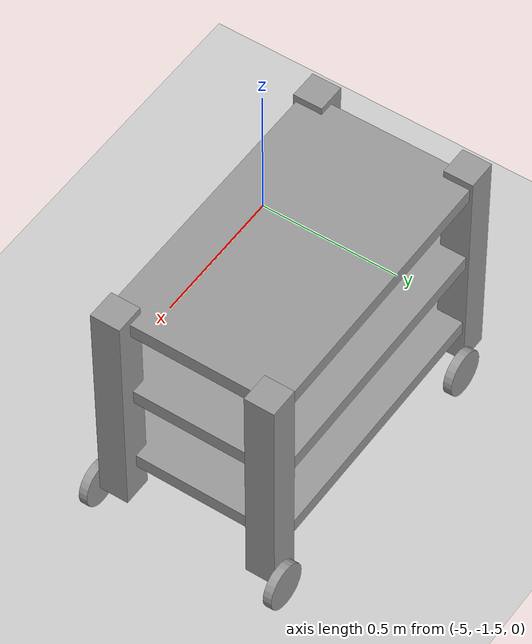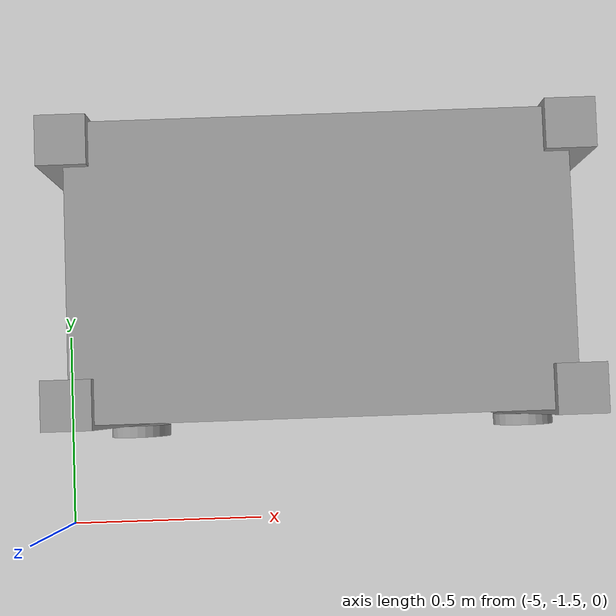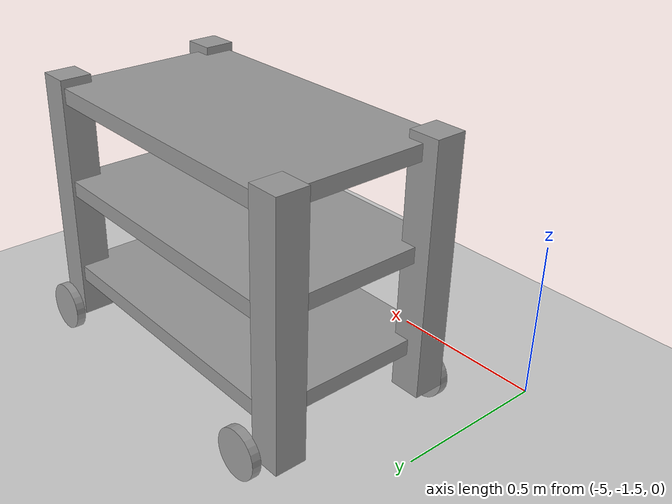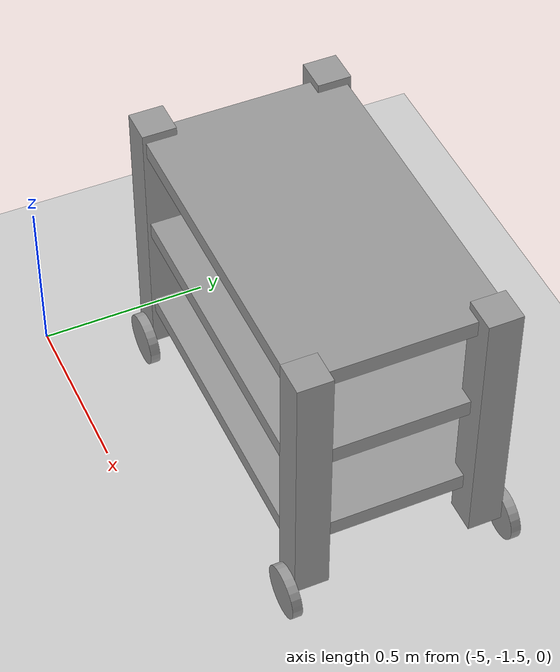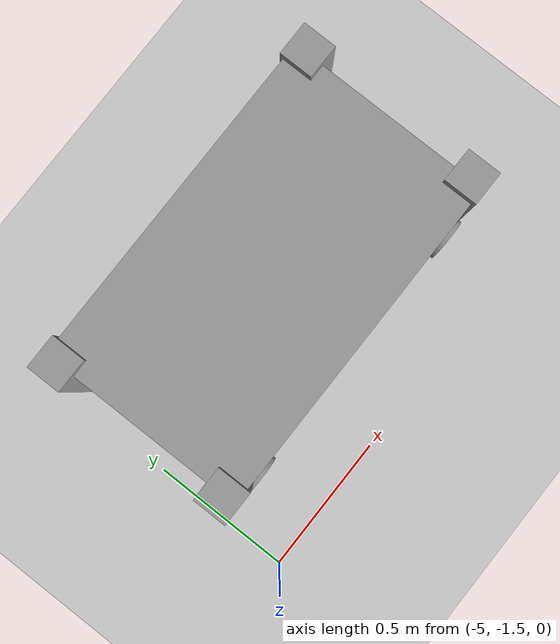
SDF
<sdf version="1.6">
 <world name="default">
  <model name="ground_plane">
   <static>1</static>
   <link name="link">
    <collision name="collision">
     <geometry><plane><normal>0 0 1</normal><size>100 100</size></plane></geometry>
     <surface><friction><ode><mu>100</mu><mu2>50</mu2></ode></friction></surface>
    </collision>
    <visual name="visual">
     <cast_shadows>0</cast_shadows>
     <geometry><plane><normal>0 0 1</normal><size>100 100</size></plane></geometry>
     <material>
      <script><uri>file://media/materials/scripts/gazebo.material</uri><name>Gazebo/Grey</name></script>
     </material>
    </visual>
   </link>
  </model>
  <model name="ER_cart6">
   <link name="link_0_clone">
    <pose>-0.060175 -0.026134 0.361383 0 -0 0</pose>
    <inertial>
     <mass>1</mass>
     <inertia>
      <ixx>0.166667</ixx>
      <ixy>0</ixy>
      <ixz>0</ixz>
      <iyy>0.166667</iyy>
      <iyz>0</iyz>
      <izz>0.166667</izz>
     </inertia>
    </inertial>
    <visual name="visual">
     <pose>0 0 0.3 0 -0 0</pose>
     <geometry><box><size>1 0.6 0.05</size></box></geometry>
     <material>
      <lighting>1</lighting>
      <script><uri>file://media/materials/scripts/gazebo.material</uri><name>Gazebo/Grey</name></script>
      <shader type="pixel"><normal_map>__default__</normal_map></shader>
      <ambient>0.3 0.3 0.3 1</ambient>
      <diffuse>0.7 0.7 0.7 1</diffuse>
      <specular>0.01 0.01 0.01 1</specular>
      <emissive>0 0 0 1</emissive>
     </material>
    </visual>
    <visual name="visual_5">
     <pose>-0.5 -0.26 -0.05 0 -0 0</pose>
     <geometry><box><size>0.1 0.1 0.8</size></box></geometry>
     <material>
      <lighting>1</lighting>
      <script><uri>file://media/materials/scripts/gazebo.material</uri><name>Gazebo/Grey</name></script>
      <shader type="pixel"><normal_map>__default__</normal_map></shader>
      <ambient>0.3 0.3 0.3 1</ambient>
      <diffuse>0.7 0.7 0.7 1</diffuse>
      <specular>0.01 0.01 0.01 1</specular>
      <emissive>0 0 0 1</emissive>
     </material>
    </visual>
    <visual name="visual_6">
     <pose>-0.5 0.26 -0.05 0 -0 0</pose>
     <geometry><box><size>0.1 0.1 0.8</size></box></geometry>
     <material>
      <lighting>1</lighting>
      <script><uri>file://media/materials/scripts/gazebo.material</uri><name>Gazebo/Grey</name></script>
      <shader type="pixel"><normal_map>__default__</normal_map></shader>
      <ambient>0.3 0.3 0.3 1</ambient>
      <diffuse>0.7 0.7 0.7 1</diffuse>
      <specular>0.01 0.01 0.01 1</specular>
      <emissive>0 0 0 1</emissive>
     </material>
    </visual>
    <visual name="visual_4">
     <pose>0.5 -0.26 -0.05 0 -0 0</pose>
     <geometry><box><size>0.1 0.1 0.8</size></box></geometry>
     <material>
      <lighting>1</lighting>
      <script><uri>file://media/materials/scripts/gazebo.material</uri><name>Gazebo/Grey</name></script>
      <shader type="pixel"><normal_map>__default__</normal_map></shader>
      <ambient>0.3 0.3 0.3 1</ambient>
      <diffuse>0.7 0.7 0.7 1</diffuse>
      <specular>0.01 0.01 0.01 1</specular>
      <emissive>0 0 0 1</emissive>
     </material>
    </visual>
    <visual name="visual_3">
     <pose>0.5 0.26 -0.05 0 -0 0</pose>
     <geometry><box><size>0.1 0.1 0.8</size></box></geometry>
     <material>
      <lighting>1</lighting>
      <script><uri>file://media/materials/scripts/gazebo.material</uri><name>Gazebo/Grey</name></script>
      <shader type="pixel"><normal_map>__default__</normal_map></shader>
      <ambient>0.3 0.3 0.3 1</ambient>
      <diffuse>0.7 0.7 0.7 1</diffuse>
      <specular>0.01 0.01 0.01 1</specular>
      <emissive>0 0 0 1</emissive>
     </material>
    </visual>
    <visual name="visual_1">
     <geometry><box><size>1 0.6 0.05</size></box></geometry>
     <material>
      <lighting>1</lighting>
      <script><uri>file://media/materials/scripts/gazebo.material</uri><name>Gazebo/Grey</name></script>
      <shader type="pixel"><normal_map>__default__</normal_map></shader>
      <ambient>0.3 0.3 0.3 1</ambient>
      <diffuse>0.7 0.7 0.7 1</diffuse>
      <specular>0.01 0.01 0.01 1</specular>
      <emissive>0 0 0 1</emissive>
     </material>
    </visual>
    <visual name="visual_2">
     <pose>0 0 -0.3 0 -0 0</pose>
     <geometry><box><size>1 0.6 0.05</size></box></geometry>
     <material>
      <lighting>1</lighting>
      <script><uri>file://media/materials/scripts/gazebo.material</uri><name>Gazebo/Grey</name></script>
      <shader type="pixel"><normal_map>__default__</normal_map></shader>
      <ambient>0.3 0.3 0.3 1</ambient>
      <diffuse>0.7 0.7 0.7 1</diffuse>
      <specular>0.01 0.01 0.01 1</specular>
      <emissive>0 0 0 1</emissive>
     </material>
    </visual>
    <collision name="collision">
     <pose>0 0 -0.05 0 -0 0</pose>
     <geometry><box><size>1 0.6 0.8</size></box></geometry>
     <surface>
      <friction>
       <ode><mu>1</mu><mu2>1</mu2><fdir1>0 0 0</fdir1><slip1>0</slip1><slip2>0</slip2></ode>
       <torsional>
        <coefficient>1</coefficient>
        <patch_radius>0</patch_radius>
        <surface_radius>0</surface_radius>
        <use_patch_radius>1</use_patch_radius>
        <ode><slip>0</slip></ode>
       </torsional>
      </friction>
      <bounce><restitution_coefficient>0</restitution_coefficient><threshold>1e+06</threshold></bounce>
      <contact>
       <collide_without_contact>0</collide_without_contact>
       <collide_without_contact_bitmask>1</collide_without_contact_bitmask>
       <collide_bitmask>1</collide_bitmask>
       <ode>
        <soft_cfm>0</soft_cfm>
        <soft_erp>0.2</soft_erp>
        <kp>1e+13</kp>
        <kd>1</kd>
        <max_vel>0.01</max_vel>
        <min_depth>0</min_depth>
       </ode>
       <bullet>
        <split_impulse>1</split_impulse>
        <split_impulse_penetration_threshold>-0.01</split_impulse_penetration_threshold>
        <soft_cfm>0</soft_cfm>
        <soft_erp>0.2</soft_erp>
        <kp>1e+13</kp>
        <kd>1</kd>
       </bullet>
      </contact>
     </surface>
    </collision>
   </link>
   <link name="link_2_clone">
    <pose>0.473113 0.2994 -0.09134 -1.54173 0 0</pose>
    <inertial>
     <mass>0.000687654</mass>
     <inertia>
      <ixx>1.06476e-06</ixx>
      <ixy>0</ixy>
      <ixz>0</ixz>
      <iyy>1.06476e-06</iyy>
      <iyz>0</iyz>
      <izz>2.03255e-06</izz>
     </inertia>
    </inertial>
    <visual name="visual">
     <geometry><cylinder><radius>0.0768867</radius><length>0.0290866</length></cylinder></geometry>
     <material>
      <lighting>1</lighting>
      <script><uri>file://media/materials/scripts/gazebo.material</uri><name>Gazebo/Grey</name></script>
      <shader type="pixel"><normal_map>__default__</normal_map></shader>
      <ambient>0.3 0.3 0.3 1</ambient>
      <diffuse>0.7 0.7 0.7 1</diffuse>
      <specular>0.01 0.01 0.01 1</specular>
      <emissive>0 0 0 1</emissive>
     </material>
    </visual>
    <collision name="collision">
     <geometry><cylinder><radius>0.076887</radius><length>0.029087</length></cylinder></geometry>
     <surface>
      <friction>
       <ode><mu>1</mu><mu2>1</mu2><fdir1>0 0 0</fdir1><slip1>0</slip1><slip2>0</slip2></ode>
       <torsional>
        <coefficient>1</coefficient>
        <patch_radius>0</patch_radius>
        <surface_radius>0</surface_radius>
        <use_patch_radius>1</use_patch_radius>
        <ode><slip>0</slip></ode>
       </torsional>
      </friction>
      <bounce><restitution_coefficient>0</restitution_coefficient><threshold>1e+06</threshold></bounce>
      <contact>
       <collide_without_contact>0</collide_without_contact>
       <collide_without_contact_bitmask>1</collide_without_contact_bitmask>
       <collide_bitmask>1</collide_bitmask>
       <ode>
        <soft_cfm>0</soft_cfm>
        <soft_erp>0.2</soft_erp>
        <kp>1e+13</kp>
        <kd>1</kd>
        <max_vel>0.01</max_vel>
        <min_depth>0</min_depth>
       </ode>
       <bullet>
        <split_impulse>1</split_impulse>
        <split_impulse_penetration_threshold>-0.01</split_impulse_penetration_threshold>
        <soft_cfm>0</soft_cfm>
        <soft_erp>0.2</soft_erp>
        <kp>1e+13</kp>
        <kd>1</kd>
       </bullet>
      </contact>
     </surface>
    </collision>
   </link>
   <link name="link_2_clone_clone_0">
    <pose>-0.473113 0.2994 -0.09134 -1.54173 0 0</pose>
    <inertial>
     <mass>0.000687654</mass>
     <inertia>
      <ixx>1.06476e-06</ixx>
      <ixy>0</ixy>
      <ixz>0</ixz>
      <iyy>1.06476e-06</iyy>
      <iyz>0</iyz>
      <izz>2.03255e-06</izz>
     </inertia>
    </inertial>
    <visual name="visual">
     <geometry><cylinder><radius>0.0768867</radius><length>0.0290866</length></cylinder></geometry>
     <material>
      <lighting>1</lighting>
      <script><uri>file://media/materials/scripts/gazebo.material</uri><name>Gazebo/Grey</name></script>
      <shader type="pixel"><normal_map>__default__</normal_map></shader>
      <ambient>0.3 0.3 0.3 1</ambient>
      <diffuse>0.7 0.7 0.7 1</diffuse>
      <specular>0.01 0.01 0.01 1</specular>
      <emissive>0 0 0 1</emissive>
     </material>
    </visual>
    <collision name="collision">
     <geometry><cylinder><radius>0.076887</radius><length>0.029087</length></cylinder></geometry>
     <surface>
      <friction>
       <ode><mu>1</mu><mu2>1</mu2><fdir1>0 0 0</fdir1><slip1>0</slip1><slip2>0</slip2></ode>
       <torsional>
        <coefficient>1</coefficient>
        <patch_radius>0</patch_radius>
        <surface_radius>0</surface_radius>
        <use_patch_radius>1</use_patch_radius>
        <ode><slip>0</slip></ode>
       </torsional>
      </friction>
      <bounce><restitution_coefficient>0</restitution_coefficient><threshold>1e+06</threshold></bounce>
      <contact>
       <collide_without_contact>0</collide_without_contact>
       <collide_without_contact_bitmask>1</collide_without_contact_bitmask>
       <collide_bitmask>1</collide_bitmask>
       <ode>
        <soft_cfm>0</soft_cfm>
        <soft_erp>0.2</soft_erp>
        <kp>1e+13</kp>
        <kd>1</kd>
        <max_vel>0.01</max_vel>
        <min_depth>0</min_depth>
       </ode>
       <bullet>
        <split_impulse>1</split_impulse>
        <split_impulse_penetration_threshold>-0.01</split_impulse_penetration_threshold>
        <soft_cfm>0</soft_cfm>
        <soft_erp>0.2</soft_erp>
        <kp>1e+13</kp>
        <kd>1</kd>
       </bullet>
      </contact>
     </surface>
    </collision>
   </link>
   <link name="link_2_clone_clone_1">
    <pose>0.473113 -0.354144 -0.09134 -1.54173 0 0</pose>
    <inertial>
     <mass>0.00068765</mass>
     <inertia>
      <ixx>1.06e-06</ixx>
      <ixy>0</ixy>
      <ixz>0</ixz>
      <iyy>1.06e-06</iyy>
      <iyz>0</iyz>
      <izz>2.03e-06</izz>
     </inertia>
    </inertial>
    <visual name="visual">
     <geometry><cylinder><radius>0.0768867</radius><length>0.0290866</length></cylinder></geometry>
     <material>
      <lighting>1</lighting>
      <script><uri>file://media/materials/scripts/gazebo.material</uri><name>Gazebo/Grey</name></script>
      <shader type="pixel"><normal_map>__default__</normal_map></shader>
      <ambient>0.3 0.3 0.3 1</ambient>
      <diffuse>0.7 0.7 0.7 1</diffuse>
      <specular>0.01 0.01 0.01 1</specular>
      <emissive>0 0 0 1</emissive>
     </material>
    </visual>
    <collision name="collision">
     <geometry><cylinder><radius>0.076887</radius><length>0.029087</length></cylinder></geometry>
     <surface>
      <friction>
       <ode><mu>1</mu><mu2>1</mu2><fdir1>0 0 0</fdir1><slip1>0</slip1><slip2>0</slip2></ode>
       <torsional>
        <coefficient>1</coefficient>
        <patch_radius>0</patch_radius>
        <surface_radius>0</surface_radius>
        <use_patch_radius>1</use_patch_radius>
        <ode><slip>0</slip></ode>
       </torsional>
      </friction>
      <bounce><restitution_coefficient>0</restitution_coefficient><threshold>1e+06</threshold></bounce>
      <contact>
       <collide_without_contact>0</collide_without_contact>
       <collide_without_contact_bitmask>1</collide_without_contact_bitmask>
       <collide_bitmask>1</collide_bitmask>
       <ode>
        <soft_cfm>0</soft_cfm>
        <soft_erp>0.2</soft_erp>
        <kp>1e+13</kp>
        <kd>1</kd>
        <max_vel>0.01</max_vel>
        <min_depth>0</min_depth>
       </ode>
       <bullet>
        <split_impulse>1</split_impulse>
        <split_impulse_penetration_threshold>-0.01</split_impulse_penetration_threshold>
        <soft_cfm>0</soft_cfm>
        <soft_erp>0.2</soft_erp>
        <kp>1e+13</kp>
        <kd>1</kd>
       </bullet>
      </contact>
     </surface>
    </collision>
   </link>
   <link name="link_2_clone_clone_clone">
    <pose>-0.533288 -0.352906 -0.09134 -1.54173 0 0</pose>
    <inertial>
     <mass>0.00068765</mass>
     <inertia>
      <ixx>1.06e-06</ixx>
      <ixy>0</ixy>
      <ixz>0</ixz>
      <iyy>1.06e-06</iyy>
      <iyz>0</iyz>
      <izz>2.03e-06</izz>
     </inertia>
    </inertial>
    <visual name="visual">
     <geometry><cylinder><radius>0.0768867</radius><length>0.0290866</length></cylinder></geometry>
     <material>
      <lighting>1</lighting>
      <script><uri>file://media/materials/scripts/gazebo.material</uri><name>Gazebo/Grey</name></script>
      <shader type="pixel"><normal_map>__default__</normal_map></shader>
      <ambient>0.3 0.3 0.3 1</ambient>
      <diffuse>0.7 0.7 0.7 1</diffuse>
      <specular>0.01 0.01 0.01 1</specular>
      <emissive>0 0 0 1</emissive>
     </material>
    </visual>
    <collision name="collision">
     <geometry><cylinder><radius>0.076887</radius><length>0.029087</length></cylinder></geometry>
     <surface>
      <friction>
       <ode><mu>1</mu><mu2>1</mu2><fdir1>0 0 0</fdir1><slip1>0</slip1><slip2>0</slip2></ode>
       <torsional>
        <coefficient>1</coefficient>
        <patch_radius>0</patch_radius>
        <surface_radius>0</surface_radius>
        <use_patch_radius>1</use_patch_radius>
        <ode><slip>0</slip></ode>
       </torsional>
      </friction>
      <bounce><restitution_coefficient>0</restitution_coefficient><threshold>1e+06</threshold></bounce>
      <contact>
       <collide_without_contact>0</collide_without_contact>
       <collide_without_contact_bitmask>1</collide_without_contact_bitmask>
       <collide_bitmask>1</collide_bitmask>
       <ode>
        <soft_cfm>0</soft_cfm>
        <soft_erp>0.2</soft_erp>
        <kp>1e+13</kp>
        <kd>1</kd>
        <max_vel>0.01</max_vel>
        <min_depth>0</min_depth>
       </ode>
       <bullet>
        <split_impulse>1</split_impulse>
        <split_impulse_penetration_threshold>-0.01</split_impulse_penetration_threshold>
        <soft_cfm>0</soft_cfm>
        <soft_erp>0.2</soft_erp>
        <kp>1e+13</kp>
        <kd>1</kd>
       </bullet>
      </contact>
     </surface>
    </collision>
   </link>
   <joint name="link_0_clone_JOINT_2" type="revolute">
    <parent>link_0_clone</parent>
    <child>link_2_clone_clone_0</child>
    <axis>
     <xyz>0 0 1</xyz>
     <use_parent_model_frame>0</use_parent_model_frame>
     <limit>
      <lower>-1.79769e+308</lower>
      <upper>1.79769e+308</upper>
      <effort>-1</effort>
      <velocity>-1</velocity>
     </limit>
     <dynamics>
      <spring_reference>0</spring_reference>
      <spring_stiffness>0</spring_stiffness>
      <damping>0</damping>
      <friction>0</friction>
     </dynamics>
    </axis>
    <physics>
     <ode><limit><cfm>0</cfm><erp>0.2</erp></limit><suspension><cfm>0</cfm><erp>0.2</erp></suspension></ode>
    </physics>
   </joint>
   <joint name="link_0_clone_JOINT_3" type="revolute">
    <parent>link_0_clone</parent>
    <child>link_2_clone_clone_1</child>
    <axis>
     <xyz>0 0 1</xyz>
     <use_parent_model_frame>0</use_parent_model_frame>
     <limit>
      <lower>-1.79769e+308</lower>
      <upper>1.79769e+308</upper>
      <effort>-1</effort>
      <velocity>-1</velocity>
     </limit>
     <dynamics>
      <spring_reference>0</spring_reference>
      <spring_stiffness>0</spring_stiffness>
      <damping>0</damping>
      <friction>0</friction>
     </dynamics>
    </axis>
    <physics>
     <ode><limit><cfm>0</cfm><erp>0.2</erp></limit><suspension><cfm>0</cfm><erp>0.2</erp></suspension></ode>
    </physics>
   </joint>
   <joint name="link_0_clone_JOINT_4" type="revolute">
    <parent>link_0_clone</parent>
    <child>link_2_clone</child>
    <axis>
     <xyz>0 0 1</xyz>
     <use_parent_model_frame>0</use_parent_model_frame>
     <limit>
      <lower>-1.79769e+308</lower>
      <upper>1.79769e+308</upper>
      <effort>-1</effort>
      <velocity>-1</velocity>
     </limit>
     <dynamics>
      <spring_reference>0</spring_reference>
      <spring_stiffness>0</spring_stiffness>
      <damping>0</damping>
      <friction>0</friction>
     </dynamics>
    </axis>
    <physics>
     <ode><limit><cfm>0</cfm><erp>0.2</erp></limit><suspension><cfm>0</cfm><erp>0.2</erp></suspension></ode>
    </physics>
   </joint>
   <joint name="link_0_clone_JOINT_6" type="revolute">
    <parent>link_0_clone</parent>
    <child>link_2_clone_clone_clone</child>
    <axis>
     <xyz>0 0 1</xyz>
     <use_parent_model_frame>0</use_parent_model_frame>
     <limit>
      <lower>-1.79769e+308</lower>
      <upper>1.79769e+308</upper>
      <effort>-1</effort>
      <velocity>-1</velocity>
     </limit>
     <dynamics>
      <spring_reference>0</spring_reference>
      <spring_stiffness>0</spring_stiffness>
      <damping>0</damping>
      <friction>0</friction>
     </dynamics>
    </axis>
    <physics>
     <ode><limit><cfm>0</cfm><erp>0.2</erp></limit><suspension><cfm>0</cfm><erp>0.2</erp></suspension></ode>
    </physics>
   </joint>
   <static>0</static>
   <pose>-4.27098 -0.902676 0.16834 0.000121 -5.1e-05 -9.2e-05</pose>
  </model>
 </world>
</sdf>
